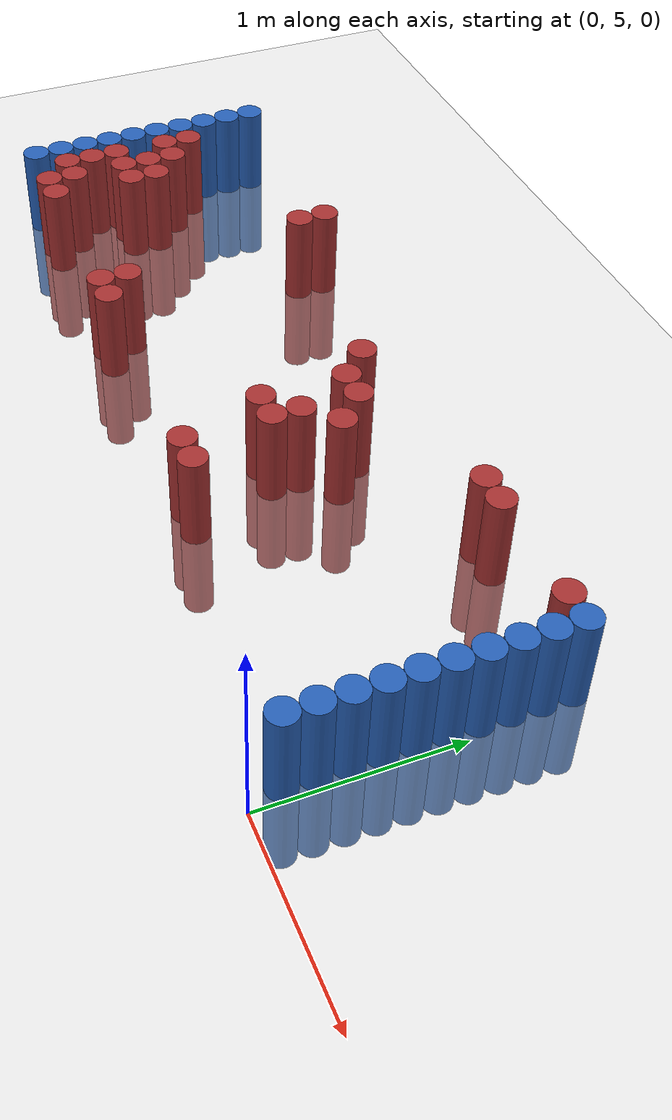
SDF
<sdf version="1.6">
 <world name="default">
  <model name="ground_plane">
   <static>1</static>
   <link name="link">
    <collision name="collision">
     <geometry><plane><normal>0 0 1</normal><size>100 100</size></plane></geometry>
     <surface><friction><ode><mu>100</mu><mu2>50</mu2></ode></friction></surface>
    </collision>
    <visual name="visual">
     <cast_shadows>0</cast_shadows>
     <geometry><plane><normal>0 0 1</normal><size>100 100</size></plane></geometry>
     <material>
      <script><uri>file://media/materials/scripts/gazebo.material</uri><name>Gazebo/Grey</name></script>
     </material>
    </visual>
   </link>
  </model>
  <model name="unit_cylinder_97">
   <static>1</static>
   <pose>-4.425000 5.325000 0.000000 0.000000 0.000000 0.000000</pose>
   <link name="link">
    <inertial>
     <mass>1</mass>
     <inertia><ixx>0.145833</ixx><ixy>0</ixy><ixz>0</ixz><iyy>0.145833</iyy><iyz>0</iyz><izz>0.125</izz></inertia>
    </inertial>
    <collision name="collision">
     <geometry><cylinder><radius>0.075000</radius><length>1</length></cylinder></geometry>
    </collision>
    <visual name="visual">
     <geometry><cylinder><radius>0.075000</radius><length>1</length></cylinder></geometry>
     <material>
      <ambient>0.152000 0.379000 0.720000 1</ambient>
      <diffuse>0.152000 0.379000 0.720000 1</diffuse>
     </material>
     <material>
      <script><name>Gazebo/Grey</name><uri>file://media/materials/scripts/gazebo.material</uri></script>
     </material>
    </visual>
   </link>
  </model>
  <model name="unit_cylinder_98">
   <static>1</static>
   <pose>-4.425000 5.475000 0.000000 0.000000 0.000000 0.000000</pose>
   <link name="link">
    <inertial>
     <mass>1</mass>
     <inertia><ixx>0.145833</ixx><ixy>0</ixy><ixz>0</ixz><iyy>0.145833</iyy><iyz>0</iyz><izz>0.125</izz></inertia>
    </inertial>
    <collision name="collision">
     <geometry><cylinder><radius>0.075000</radius><length>1</length></cylinder></geometry>
    </collision>
    <visual name="visual">
     <geometry><cylinder><radius>0.075000</radius><length>1</length></cylinder></geometry>
     <material>
      <ambient>0.152000 0.379000 0.720000 1</ambient>
      <diffuse>0.152000 0.379000 0.720000 1</diffuse>
     </material>
     <material>
      <script><name>Gazebo/Grey</name><uri>file://media/materials/scripts/gazebo.material</uri></script>
     </material>
    </visual>
   </link>
  </model>
  <model name="unit_cylinder_99">
   <static>1</static>
   <pose>-4.425000 5.625000 0.000000 0.000000 0.000000 0.000000</pose>
   <link name="link">
    <inertial>
     <mass>1</mass>
     <inertia><ixx>0.145833</ixx><ixy>0</ixy><ixz>0</ixz><iyy>0.145833</iyy><iyz>0</iyz><izz>0.125</izz></inertia>
    </inertial>
    <collision name="collision">
     <geometry><cylinder><radius>0.075000</radius><length>1</length></cylinder></geometry>
    </collision>
    <visual name="visual">
     <geometry><cylinder><radius>0.075000</radius><length>1</length></cylinder></geometry>
     <material>
      <ambient>0.152000 0.379000 0.720000 1</ambient>
      <diffuse>0.152000 0.379000 0.720000 1</diffuse>
     </material>
     <material>
      <script><name>Gazebo/Grey</name><uri>file://media/materials/scripts/gazebo.material</uri></script>
     </material>
    </visual>
   </link>
  </model>
  <model name="unit_cylinder_100">
   <static>1</static>
   <pose>-4.425000 5.775000 0.000000 0.000000 0.000000 0.000000</pose>
   <link name="link">
    <inertial>
     <mass>1</mass>
     <inertia><ixx>0.145833</ixx><ixy>0</ixy><ixz>0</ixz><iyy>0.145833</iyy><iyz>0</iyz><izz>0.125</izz></inertia>
    </inertial>
    <collision name="collision">
     <geometry><cylinder><radius>0.075000</radius><length>1</length></cylinder></geometry>
    </collision>
    <visual name="visual">
     <geometry><cylinder><radius>0.075000</radius><length>1</length></cylinder></geometry>
     <material>
      <ambient>0.152000 0.379000 0.720000 1</ambient>
      <diffuse>0.152000 0.379000 0.720000 1</diffuse>
     </material>
     <material>
      <script><name>Gazebo/Grey</name><uri>file://media/materials/scripts/gazebo.material</uri></script>
     </material>
    </visual>
   </link>
  </model>
  <model name="unit_cylinder_101">
   <static>1</static>
   <pose>-4.425000 5.925000 0.000000 0.000000 0.000000 0.000000</pose>
   <link name="link">
    <inertial>
     <mass>1</mass>
     <inertia><ixx>0.145833</ixx><ixy>0</ixy><ixz>0</ixz><iyy>0.145833</iyy><iyz>0</iyz><izz>0.125</izz></inertia>
    </inertial>
    <collision name="collision">
     <geometry><cylinder><radius>0.075000</radius><length>1</length></cylinder></geometry>
    </collision>
    <visual name="visual">
     <geometry><cylinder><radius>0.075000</radius><length>1</length></cylinder></geometry>
     <material>
      <ambient>0.152000 0.379000 0.720000 1</ambient>
      <diffuse>0.152000 0.379000 0.720000 1</diffuse>
     </material>
     <material>
      <script><name>Gazebo/Grey</name><uri>file://media/materials/scripts/gazebo.material</uri></script>
     </material>
    </visual>
   </link>
  </model>
  <model name="unit_cylinder_102">
   <static>1</static>
   <pose>-4.425000 6.075000 0.000000 0.000000 0.000000 0.000000</pose>
   <link name="link">
    <inertial>
     <mass>1</mass>
     <inertia><ixx>0.145833</ixx><ixy>0</ixy><ixz>0</ixz><iyy>0.145833</iyy><iyz>0</iyz><izz>0.125</izz></inertia>
    </inertial>
    <collision name="collision">
     <geometry><cylinder><radius>0.075000</radius><length>1</length></cylinder></geometry>
    </collision>
    <visual name="visual">
     <geometry><cylinder><radius>0.075000</radius><length>1</length></cylinder></geometry>
     <material>
      <ambient>0.152000 0.379000 0.720000 1</ambient>
      <diffuse>0.152000 0.379000 0.720000 1</diffuse>
     </material>
     <material>
      <script><name>Gazebo/Grey</name><uri>file://media/materials/scripts/gazebo.material</uri></script>
     </material>
    </visual>
   </link>
  </model>
  <model name="unit_cylinder_103">
   <static>1</static>
   <pose>-4.425000 6.225000 0.000000 0.000000 0.000000 0.000000</pose>
   <link name="link">
    <inertial>
     <mass>1</mass>
     <inertia><ixx>0.145833</ixx><ixy>0</ixy><ixz>0</ixz><iyy>0.145833</iyy><iyz>0</iyz><izz>0.125</izz></inertia>
    </inertial>
    <collision name="collision">
     <geometry><cylinder><radius>0.075000</radius><length>1</length></cylinder></geometry>
    </collision>
    <visual name="visual">
     <geometry><cylinder><radius>0.075000</radius><length>1</length></cylinder></geometry>
     <material>
      <ambient>0.152000 0.379000 0.720000 1</ambient>
      <diffuse>0.152000 0.379000 0.720000 1</diffuse>
     </material>
     <material>
      <script><name>Gazebo/Grey</name><uri>file://media/materials/scripts/gazebo.material</uri></script>
     </material>
    </visual>
   </link>
  </model>
  <model name="unit_cylinder_104">
   <static>1</static>
   <pose>-4.425000 6.375000 0.000000 0.000000 0.000000 0.000000</pose>
   <link name="link">
    <inertial>
     <mass>1</mass>
     <inertia><ixx>0.145833</ixx><ixy>0</ixy><ixz>0</ixz><iyy>0.145833</iyy><iyz>0</iyz><izz>0.125</izz></inertia>
    </inertial>
    <collision name="collision">
     <geometry><cylinder><radius>0.075000</radius><length>1</length></cylinder></geometry>
    </collision>
    <visual name="visual">
     <geometry><cylinder><radius>0.075000</radius><length>1</length></cylinder></geometry>
     <material>
      <ambient>0.152000 0.379000 0.720000 1</ambient>
      <diffuse>0.152000 0.379000 0.720000 1</diffuse>
     </material>
     <material>
      <script><name>Gazebo/Grey</name><uri>file://media/materials/scripts/gazebo.material</uri></script>
     </material>
    </visual>
   </link>
  </model>
  <model name="unit_cylinder_105">
   <static>1</static>
   <pose>-4.425000 6.525000 0.000000 0.000000 0.000000 0.000000</pose>
   <link name="link">
    <inertial>
     <mass>1</mass>
     <inertia><ixx>0.145833</ixx><ixy>0</ixy><ixz>0</ixz><iyy>0.145833</iyy><iyz>0</iyz><izz>0.125</izz></inertia>
    </inertial>
    <collision name="collision">
     <geometry><cylinder><radius>0.075000</radius><length>1</length></cylinder></geometry>
    </collision>
    <visual name="visual">
     <geometry><cylinder><radius>0.075000</radius><length>1</length></cylinder></geometry>
     <material>
      <ambient>0.152000 0.379000 0.720000 1</ambient>
      <diffuse>0.152000 0.379000 0.720000 1</diffuse>
     </material>
     <material>
      <script><name>Gazebo/Grey</name><uri>file://media/materials/scripts/gazebo.material</uri></script>
     </material>
    </visual>
   </link>
  </model>
  <model name="unit_cylinder_106">
   <static>1</static>
   <pose>-4.425000 6.675000 0.000000 0.000000 0.000000 0.000000</pose>
   <link name="link">
    <inertial>
     <mass>1</mass>
     <inertia><ixx>0.145833</ixx><ixy>0</ixy><ixz>0</ixz><iyy>0.145833</iyy><iyz>0</iyz><izz>0.125</izz></inertia>
    </inertial>
    <collision name="collision">
     <geometry><cylinder><radius>0.075000</radius><length>1</length></cylinder></geometry>
    </collision>
    <visual name="visual">
     <geometry><cylinder><radius>0.075000</radius><length>1</length></cylinder></geometry>
     <material>
      <ambient>0.152000 0.379000 0.720000 1</ambient>
      <diffuse>0.152000 0.379000 0.720000 1</diffuse>
     </material>
     <material>
      <script><name>Gazebo/Grey</name><uri>file://media/materials/scripts/gazebo.material</uri></script>
     </material>
    </visual>
   </link>
  </model>
  <model name="unit_cylinder_127">
   <static>1</static>
   <pose>-4.275000 5.475000 0.000000 0.000000 0.000000 0.000000</pose>
   <link name="link">
    <inertial>
     <mass>1</mass>
     <inertia><ixx>0.145833</ixx><ixy>0</ixy><ixz>0</ixz><iyy>0.145833</iyy><iyz>0</iyz><izz>0.125</izz></inertia>
    </inertial>
    <collision name="collision">
     <geometry><cylinder><radius>0.075000</radius><length>1</length></cylinder></geometry>
    </collision>
    <visual name="visual">
     <geometry><cylinder><radius>0.075000</radius><length>1</length></cylinder></geometry>
     <material>
      <ambient>0.648000 0.192000 0.192000 1</ambient>
      <diffuse>0.648000 0.192000 0.192000 1</diffuse>
     </material>
     <material>
      <script><name>Gazebo/Grey</name><uri>file://media/materials/scripts/gazebo.material</uri></script>
     </material>
    </visual>
   </link>
  </model>
  <model name="unit_cylinder_128">
   <static>1</static>
   <pose>-4.275000 5.625000 0.000000 0.000000 0.000000 0.000000</pose>
   <link name="link">
    <inertial>
     <mass>1</mass>
     <inertia><ixx>0.145833</ixx><ixy>0</ixy><ixz>0</ixz><iyy>0.145833</iyy><iyz>0</iyz><izz>0.125</izz></inertia>
    </inertial>
    <collision name="collision">
     <geometry><cylinder><radius>0.075000</radius><length>1</length></cylinder></geometry>
    </collision>
    <visual name="visual">
     <geometry><cylinder><radius>0.075000</radius><length>1</length></cylinder></geometry>
     <material>
      <ambient>0.648000 0.192000 0.192000 1</ambient>
      <diffuse>0.648000 0.192000 0.192000 1</diffuse>
     </material>
     <material>
      <script><name>Gazebo/Grey</name><uri>file://media/materials/scripts/gazebo.material</uri></script>
     </material>
    </visual>
   </link>
  </model>
  <model name="unit_cylinder_129">
   <static>1</static>
   <pose>-4.275000 5.775000 0.000000 0.000000 0.000000 0.000000</pose>
   <link name="link">
    <inertial>
     <mass>1</mass>
     <inertia><ixx>0.145833</ixx><ixy>0</ixy><ixz>0</ixz><iyy>0.145833</iyy><iyz>0</iyz><izz>0.125</izz></inertia>
    </inertial>
    <collision name="collision">
     <geometry><cylinder><radius>0.075000</radius><length>1</length></cylinder></geometry>
    </collision>
    <visual name="visual">
     <geometry><cylinder><radius>0.075000</radius><length>1</length></cylinder></geometry>
     <material>
      <ambient>0.648000 0.192000 0.192000 1</ambient>
      <diffuse>0.648000 0.192000 0.192000 1</diffuse>
     </material>
     <material>
      <script><name>Gazebo/Grey</name><uri>file://media/materials/scripts/gazebo.material</uri></script>
     </material>
    </visual>
   </link>
  </model>
  <model name="unit_cylinder_130">
   <static>1</static>
   <pose>-4.275000 6.075000 0.000000 0.000000 0.000000 0.000000</pose>
   <link name="link">
    <inertial>
     <mass>1</mass>
     <inertia><ixx>0.145833</ixx><ixy>0</ixy><ixz>0</ixz><iyy>0.145833</iyy><iyz>0</iyz><izz>0.125</izz></inertia>
    </inertial>
    <collision name="collision">
     <geometry><cylinder><radius>0.075000</radius><length>1</length></cylinder></geometry>
    </collision>
    <visual name="visual">
     <geometry><cylinder><radius>0.075000</radius><length>1</length></cylinder></geometry>
     <material>
      <ambient>0.648000 0.192000 0.192000 1</ambient>
      <diffuse>0.648000 0.192000 0.192000 1</diffuse>
     </material>
     <material>
      <script><name>Gazebo/Grey</name><uri>file://media/materials/scripts/gazebo.material</uri></script>
     </material>
    </visual>
   </link>
  </model>
  <model name="unit_cylinder_131">
   <static>1</static>
   <pose>-4.275000 6.225000 0.000000 0.000000 0.000000 0.000000</pose>
   <link name="link">
    <inertial>
     <mass>1</mass>
     <inertia><ixx>0.145833</ixx><ixy>0</ixy><ixz>0</ixz><iyy>0.145833</iyy><iyz>0</iyz><izz>0.125</izz></inertia>
    </inertial>
    <collision name="collision">
     <geometry><cylinder><radius>0.075000</radius><length>1</length></cylinder></geometry>
    </collision>
    <visual name="visual">
     <geometry><cylinder><radius>0.075000</radius><length>1</length></cylinder></geometry>
     <material>
      <ambient>0.648000 0.192000 0.192000 1</ambient>
      <diffuse>0.648000 0.192000 0.192000 1</diffuse>
     </material>
     <material>
      <script><name>Gazebo/Grey</name><uri>file://media/materials/scripts/gazebo.material</uri></script>
     </material>
    </visual>
   </link>
  </model>
  <model name="unit_cylinder_135">
   <static>1</static>
   <pose>-4.125000 5.325000 0.000000 0.000000 0.000000 0.000000</pose>
   <link name="link">
    <inertial>
     <mass>1</mass>
     <inertia><ixx>0.145833</ixx><ixy>0</ixy><ixz>0</ixz><iyy>0.145833</iyy><iyz>0</iyz><izz>0.125</izz></inertia>
    </inertial>
    <collision name="collision">
     <geometry><cylinder><radius>0.075000</radius><length>1</length></cylinder></geometry>
    </collision>
    <visual name="visual">
     <geometry><cylinder><radius>0.075000</radius><length>1</length></cylinder></geometry>
     <material>
      <ambient>0.648000 0.192000 0.192000 1</ambient>
      <diffuse>0.648000 0.192000 0.192000 1</diffuse>
     </material>
     <material>
      <script><name>Gazebo/Grey</name><uri>file://media/materials/scripts/gazebo.material</uri></script>
     </material>
    </visual>
   </link>
  </model>
  <model name="unit_cylinder_136">
   <static>1</static>
   <pose>-4.125000 5.475000 0.000000 0.000000 0.000000 0.000000</pose>
   <link name="link">
    <inertial>
     <mass>1</mass>
     <inertia><ixx>0.145833</ixx><ixy>0</ixy><ixz>0</ixz><iyy>0.145833</iyy><iyz>0</iyz><izz>0.125</izz></inertia>
    </inertial>
    <collision name="collision">
     <geometry><cylinder><radius>0.075000</radius><length>1</length></cylinder></geometry>
    </collision>
    <visual name="visual">
     <geometry><cylinder><radius>0.075000</radius><length>1</length></cylinder></geometry>
     <material>
      <ambient>0.648000 0.192000 0.192000 1</ambient>
      <diffuse>0.648000 0.192000 0.192000 1</diffuse>
     </material>
     <material>
      <script><name>Gazebo/Grey</name><uri>file://media/materials/scripts/gazebo.material</uri></script>
     </material>
    </visual>
   </link>
  </model>
  <model name="unit_cylinder_137">
   <static>1</static>
   <pose>-4.125000 5.775000 0.000000 0.000000 0.000000 0.000000</pose>
   <link name="link">
    <inertial>
     <mass>1</mass>
     <inertia><ixx>0.145833</ixx><ixy>0</ixy><ixz>0</ixz><iyy>0.145833</iyy><iyz>0</iyz><izz>0.125</izz></inertia>
    </inertial>
    <collision name="collision">
     <geometry><cylinder><radius>0.075000</radius><length>1</length></cylinder></geometry>
    </collision>
    <visual name="visual">
     <geometry><cylinder><radius>0.075000</radius><length>1</length></cylinder></geometry>
     <material>
      <ambient>0.648000 0.192000 0.192000 1</ambient>
      <diffuse>0.648000 0.192000 0.192000 1</diffuse>
     </material>
     <material>
      <script><name>Gazebo/Grey</name><uri>file://media/materials/scripts/gazebo.material</uri></script>
     </material>
    </visual>
   </link>
  </model>
  <model name="unit_cylinder_138">
   <static>1</static>
   <pose>-4.125000 5.925000 0.000000 0.000000 0.000000 0.000000</pose>
   <link name="link">
    <inertial>
     <mass>1</mass>
     <inertia><ixx>0.145833</ixx><ixy>0</ixy><ixz>0</ixz><iyy>0.145833</iyy><iyz>0</iyz><izz>0.125</izz></inertia>
    </inertial>
    <collision name="collision">
     <geometry><cylinder><radius>0.075000</radius><length>1</length></cylinder></geometry>
    </collision>
    <visual name="visual">
     <geometry><cylinder><radius>0.075000</radius><length>1</length></cylinder></geometry>
     <material>
      <ambient>0.648000 0.192000 0.192000 1</ambient>
      <diffuse>0.648000 0.192000 0.192000 1</diffuse>
     </material>
     <material>
      <script><name>Gazebo/Grey</name><uri>file://media/materials/scripts/gazebo.material</uri></script>
     </material>
    </visual>
   </link>
  </model>
  <model name="unit_cylinder_139">
   <static>1</static>
   <pose>-4.125000 6.075000 0.000000 0.000000 0.000000 0.000000</pose>
   <link name="link">
    <inertial>
     <mass>1</mass>
     <inertia><ixx>0.145833</ixx><ixy>0</ixy><ixz>0</ixz><iyy>0.145833</iyy><iyz>0</iyz><izz>0.125</izz></inertia>
    </inertial>
    <collision name="collision">
     <geometry><cylinder><radius>0.075000</radius><length>1</length></cylinder></geometry>
    </collision>
    <visual name="visual">
     <geometry><cylinder><radius>0.075000</radius><length>1</length></cylinder></geometry>
     <material>
      <ambient>0.648000 0.192000 0.192000 1</ambient>
      <diffuse>0.648000 0.192000 0.192000 1</diffuse>
     </material>
     <material>
      <script><name>Gazebo/Grey</name><uri>file://media/materials/scripts/gazebo.material</uri></script>
     </material>
    </visual>
   </link>
  </model>
  <model name="unit_cylinder_141">
   <static>1</static>
   <pose>-3.975000 5.325000 0.000000 0.000000 0.000000 0.000000</pose>
   <link name="link">
    <inertial>
     <mass>1</mass>
     <inertia><ixx>0.145833</ixx><ixy>0</ixy><ixz>0</ixz><iyy>0.145833</iyy><iyz>0</iyz><izz>0.125</izz></inertia>
    </inertial>
    <collision name="collision">
     <geometry><cylinder><radius>0.075000</radius><length>1</length></cylinder></geometry>
    </collision>
    <visual name="visual">
     <geometry><cylinder><radius>0.075000</radius><length>1</length></cylinder></geometry>
     <material>
      <ambient>0.648000 0.192000 0.192000 1</ambient>
      <diffuse>0.648000 0.192000 0.192000 1</diffuse>
     </material>
     <material>
      <script><name>Gazebo/Grey</name><uri>file://media/materials/scripts/gazebo.material</uri></script>
     </material>
    </visual>
   </link>
  </model>
  <model name="unit_cylinder_142">
   <static>1</static>
   <pose>-3.975000 5.775000 0.000000 0.000000 0.000000 0.000000</pose>
   <link name="link">
    <inertial>
     <mass>1</mass>
     <inertia><ixx>0.145833</ixx><ixy>0</ixy><ixz>0</ixz><iyy>0.145833</iyy><iyz>0</iyz><izz>0.125</izz></inertia>
    </inertial>
    <collision name="collision">
     <geometry><cylinder><radius>0.075000</radius><length>1</length></cylinder></geometry>
    </collision>
    <visual name="visual">
     <geometry><cylinder><radius>0.075000</radius><length>1</length></cylinder></geometry>
     <material>
      <ambient>0.648000 0.192000 0.192000 1</ambient>
      <diffuse>0.648000 0.192000 0.192000 1</diffuse>
     </material>
     <material>
      <script><name>Gazebo/Grey</name><uri>file://media/materials/scripts/gazebo.material</uri></script>
     </material>
    </visual>
   </link>
  </model>
  <model name="unit_cylinder_143">
   <static>1</static>
   <pose>-3.975000 5.925000 0.000000 0.000000 0.000000 0.000000</pose>
   <link name="link">
    <inertial>
     <mass>1</mass>
     <inertia><ixx>0.145833</ixx><ixy>0</ixy><ixz>0</ixz><iyy>0.145833</iyy><iyz>0</iyz><izz>0.125</izz></inertia>
    </inertial>
    <collision name="collision">
     <geometry><cylinder><radius>0.075000</radius><length>1</length></cylinder></geometry>
    </collision>
    <visual name="visual">
     <geometry><cylinder><radius>0.075000</radius><length>1</length></cylinder></geometry>
     <material>
      <ambient>0.648000 0.192000 0.192000 1</ambient>
      <diffuse>0.648000 0.192000 0.192000 1</diffuse>
     </material>
     <material>
      <script><name>Gazebo/Grey</name><uri>file://media/materials/scripts/gazebo.material</uri></script>
     </material>
    </visual>
   </link>
  </model>
  <model name="unit_cylinder_161">
   <static>1</static>
   <pose>-3.225000 6.525000 0.000000 0.000000 0.000000 0.000000</pose>
   <link name="link">
    <inertial>
     <mass>1</mass>
     <inertia><ixx>0.145833</ixx><ixy>0</ixy><ixz>0</ixz><iyy>0.145833</iyy><iyz>0</iyz><izz>0.125</izz></inertia>
    </inertial>
    <collision name="collision">
     <geometry><cylinder><radius>0.075000</radius><length>1</length></cylinder></geometry>
    </collision>
    <visual name="visual">
     <geometry><cylinder><radius>0.075000</radius><length>1</length></cylinder></geometry>
     <material>
      <ambient>0.648000 0.192000 0.192000 1</ambient>
      <diffuse>0.648000 0.192000 0.192000 1</diffuse>
     </material>
     <material>
      <script><name>Gazebo/Grey</name><uri>file://media/materials/scripts/gazebo.material</uri></script>
     </material>
    </visual>
   </link>
  </model>
  <model name="unit_cylinder_162">
   <static>1</static>
   <pose>-3.225000 6.675000 0.000000 0.000000 0.000000 0.000000</pose>
   <link name="link">
    <inertial>
     <mass>1</mass>
     <inertia><ixx>0.145833</ixx><ixy>0</ixy><ixz>0</ixz><iyy>0.145833</iyy><iyz>0</iyz><izz>0.125</izz></inertia>
    </inertial>
    <collision name="collision">
     <geometry><cylinder><radius>0.075000</radius><length>1</length></cylinder></geometry>
    </collision>
    <visual name="visual">
     <geometry><cylinder><radius>0.075000</radius><length>1</length></cylinder></geometry>
     <material>
      <ambient>0.648000 0.192000 0.192000 1</ambient>
      <diffuse>0.648000 0.192000 0.192000 1</diffuse>
     </material>
     <material>
      <script><name>Gazebo/Grey</name><uri>file://media/materials/scripts/gazebo.material</uri></script>
     </material>
    </visual>
   </link>
  </model>
  <model name="unit_cylinder_171">
   <static>1</static>
   <pose>-3.075000 5.325000 0.000000 0.000000 0.000000 0.000000</pose>
   <link name="link">
    <inertial>
     <mass>1</mass>
     <inertia><ixx>0.145833</ixx><ixy>0</ixy><ixz>0</ixz><iyy>0.145833</iyy><iyz>0</iyz><izz>0.125</izz></inertia>
    </inertial>
    <collision name="collision">
     <geometry><cylinder><radius>0.075000</radius><length>1</length></cylinder></geometry>
    </collision>
    <visual name="visual">
     <geometry><cylinder><radius>0.075000</radius><length>1</length></cylinder></geometry>
     <material>
      <ambient>0.648000 0.192000 0.192000 1</ambient>
      <diffuse>0.648000 0.192000 0.192000 1</diffuse>
     </material>
     <material>
      <script><name>Gazebo/Grey</name><uri>file://media/materials/scripts/gazebo.material</uri></script>
     </material>
    </visual>
   </link>
  </model>
  <model name="unit_cylinder_172">
   <static>1</static>
   <pose>-3.075000 5.475000 0.000000 0.000000 0.000000 0.000000</pose>
   <link name="link">
    <inertial>
     <mass>1</mass>
     <inertia><ixx>0.145833</ixx><ixy>0</ixy><ixz>0</ixz><iyy>0.145833</iyy><iyz>0</iyz><izz>0.125</izz></inertia>
    </inertial>
    <collision name="collision">
     <geometry><cylinder><radius>0.075000</radius><length>1</length></cylinder></geometry>
    </collision>
    <visual name="visual">
     <geometry><cylinder><radius>0.075000</radius><length>1</length></cylinder></geometry>
     <material>
      <ambient>0.648000 0.192000 0.192000 1</ambient>
      <diffuse>0.648000 0.192000 0.192000 1</diffuse>
     </material>
     <material>
      <script><name>Gazebo/Grey</name><uri>file://media/materials/scripts/gazebo.material</uri></script>
     </material>
    </visual>
   </link>
  </model>
  <model name="unit_cylinder_180">
   <static>1</static>
   <pose>-2.925000 5.325000 0.000000 0.000000 0.000000 0.000000</pose>
   <link name="link">
    <inertial>
     <mass>1</mass>
     <inertia><ixx>0.145833</ixx><ixy>0</ixy><ixz>0</ixz><iyy>0.145833</iyy><iyz>0</iyz><izz>0.125</izz></inertia>
    </inertial>
    <collision name="collision">
     <geometry><cylinder><radius>0.075000</radius><length>1</length></cylinder></geometry>
    </collision>
    <visual name="visual">
     <geometry><cylinder><radius>0.075000</radius><length>1</length></cylinder></geometry>
     <material>
      <ambient>0.648000 0.192000 0.192000 1</ambient>
      <diffuse>0.648000 0.192000 0.192000 1</diffuse>
     </material>
     <material>
      <script><name>Gazebo/Grey</name><uri>file://media/materials/scripts/gazebo.material</uri></script>
     </material>
    </visual>
   </link>
  </model>
  <model name="unit_cylinder_191">
   <static>1</static>
   <pose>-2.025000 6.375000 0.000000 0.000000 0.000000 0.000000</pose>
   <link name="link">
    <inertial>
     <mass>1</mass>
     <inertia><ixx>0.145833</ixx><ixy>0</ixy><ixz>0</ixz><iyy>0.145833</iyy><iyz>0</iyz><izz>0.125</izz></inertia>
    </inertial>
    <collision name="collision">
     <geometry><cylinder><radius>0.075000</radius><length>1</length></cylinder></geometry>
    </collision>
    <visual name="visual">
     <geometry><cylinder><radius>0.075000</radius><length>1</length></cylinder></geometry>
     <material>
      <ambient>0.648000 0.192000 0.192000 1</ambient>
      <diffuse>0.648000 0.192000 0.192000 1</diffuse>
     </material>
     <material>
      <script><name>Gazebo/Grey</name><uri>file://media/materials/scripts/gazebo.material</uri></script>
     </material>
    </visual>
   </link>
  </model>
  <model name="unit_cylinder_199">
   <static>1</static>
   <pose>-1.875000 5.775000 0.000000 0.000000 0.000000 0.000000</pose>
   <link name="link">
    <inertial>
     <mass>1</mass>
     <inertia><ixx>0.145833</ixx><ixy>0</ixy><ixz>0</ixz><iyy>0.145833</iyy><iyz>0</iyz><izz>0.125</izz></inertia>
    </inertial>
    <collision name="collision">
     <geometry><cylinder><radius>0.075000</radius><length>1</length></cylinder></geometry>
    </collision>
    <visual name="visual">
     <geometry><cylinder><radius>0.075000</radius><length>1</length></cylinder></geometry>
     <material>
      <ambient>0.648000 0.192000 0.192000 1</ambient>
      <diffuse>0.648000 0.192000 0.192000 1</diffuse>
     </material>
     <material>
      <script><name>Gazebo/Grey</name><uri>file://media/materials/scripts/gazebo.material</uri></script>
     </material>
    </visual>
   </link>
  </model>
  <model name="unit_cylinder_200">
   <static>1</static>
   <pose>-1.875000 6.225000 0.000000 0.000000 0.000000 0.000000</pose>
   <link name="link">
    <inertial>
     <mass>1</mass>
     <inertia><ixx>0.145833</ixx><ixy>0</ixy><ixz>0</ixz><iyy>0.145833</iyy><iyz>0</iyz><izz>0.125</izz></inertia>
    </inertial>
    <collision name="collision">
     <geometry><cylinder><radius>0.075000</radius><length>1</length></cylinder></geometry>
    </collision>
    <visual name="visual">
     <geometry><cylinder><radius>0.075000</radius><length>1</length></cylinder></geometry>
     <material>
      <ambient>0.648000 0.192000 0.192000 1</ambient>
      <diffuse>0.648000 0.192000 0.192000 1</diffuse>
     </material>
     <material>
      <script><name>Gazebo/Grey</name><uri>file://media/materials/scripts/gazebo.material</uri></script>
     </material>
    </visual>
   </link>
  </model>
  <model name="unit_cylinder_209">
   <static>1</static>
   <pose>-1.725000 5.325000 0.000000 0.000000 0.000000 0.000000</pose>
   <link name="link">
    <inertial>
     <mass>1</mass>
     <inertia><ixx>0.145833</ixx><ixy>0</ixy><ixz>0</ixz><iyy>0.145833</iyy><iyz>0</iyz><izz>0.125</izz></inertia>
    </inertial>
    <collision name="collision">
     <geometry><cylinder><radius>0.075000</radius><length>1</length></cylinder></geometry>
    </collision>
    <visual name="visual">
     <geometry><cylinder><radius>0.075000</radius><length>1</length></cylinder></geometry>
     <material>
      <ambient>0.648000 0.192000 0.192000 1</ambient>
      <diffuse>0.648000 0.192000 0.192000 1</diffuse>
     </material>
     <material>
      <script><name>Gazebo/Grey</name><uri>file://media/materials/scripts/gazebo.material</uri></script>
     </material>
    </visual>
   </link>
  </model>
  <model name="unit_cylinder_210">
   <static>1</static>
   <pose>-1.725000 5.775000 0.000000 0.000000 0.000000 0.000000</pose>
   <link name="link">
    <inertial>
     <mass>1</mass>
     <inertia><ixx>0.145833</ixx><ixy>0</ixy><ixz>0</ixz><iyy>0.145833</iyy><iyz>0</iyz><izz>0.125</izz></inertia>
    </inertial>
    <collision name="collision">
     <geometry><cylinder><radius>0.075000</radius><length>1</length></cylinder></geometry>
    </collision>
    <visual name="visual">
     <geometry><cylinder><radius>0.075000</radius><length>1</length></cylinder></geometry>
     <material>
      <ambient>0.648000 0.192000 0.192000 1</ambient>
      <diffuse>0.648000 0.192000 0.192000 1</diffuse>
     </material>
     <material>
      <script><name>Gazebo/Grey</name><uri>file://media/materials/scripts/gazebo.material</uri></script>
     </material>
    </visual>
   </link>
  </model>
  <model name="unit_cylinder_211">
   <static>1</static>
   <pose>-1.725000 5.925000 0.000000 0.000000 0.000000 0.000000</pose>
   <link name="link">
    <inertial>
     <mass>1</mass>
     <inertia><ixx>0.145833</ixx><ixy>0</ixy><ixz>0</ixz><iyy>0.145833</iyy><iyz>0</iyz><izz>0.125</izz></inertia>
    </inertial>
    <collision name="collision">
     <geometry><cylinder><radius>0.075000</radius><length>1</length></cylinder></geometry>
    </collision>
    <visual name="visual">
     <geometry><cylinder><radius>0.075000</radius><length>1</length></cylinder></geometry>
     <material>
      <ambient>0.648000 0.192000 0.192000 1</ambient>
      <diffuse>0.648000 0.192000 0.192000 1</diffuse>
     </material>
     <material>
      <script><name>Gazebo/Grey</name><uri>file://media/materials/scripts/gazebo.material</uri></script>
     </material>
    </visual>
   </link>
  </model>
  <model name="unit_cylinder_212">
   <static>1</static>
   <pose>-1.725000 6.225000 0.000000 0.000000 0.000000 0.000000</pose>
   <link name="link">
    <inertial>
     <mass>1</mass>
     <inertia><ixx>0.145833</ixx><ixy>0</ixy><ixz>0</ixz><iyy>0.145833</iyy><iyz>0</iyz><izz>0.125</izz></inertia>
    </inertial>
    <collision name="collision">
     <geometry><cylinder><radius>0.075000</radius><length>1</length></cylinder></geometry>
    </collision>
    <visual name="visual">
     <geometry><cylinder><radius>0.075000</radius><length>1</length></cylinder></geometry>
     <material>
      <ambient>0.648000 0.192000 0.192000 1</ambient>
      <diffuse>0.648000 0.192000 0.192000 1</diffuse>
     </material>
     <material>
      <script><name>Gazebo/Grey</name><uri>file://media/materials/scripts/gazebo.material</uri></script>
     </material>
    </visual>
   </link>
  </model>
  <model name="unit_cylinder_217">
   <static>1</static>
   <pose>-1.575000 5.325000 0.000000 0.000000 0.000000 0.000000</pose>
   <link name="link">
    <inertial>
     <mass>1</mass>
     <inertia><ixx>0.145833</ixx><ixy>0</ixy><ixz>0</ixz><iyy>0.145833</iyy><iyz>0</iyz><izz>0.125</izz></inertia>
    </inertial>
    <collision name="collision">
     <geometry><cylinder><radius>0.075000</radius><length>1</length></cylinder></geometry>
    </collision>
    <visual name="visual">
     <geometry><cylinder><radius>0.075000</radius><length>1</length></cylinder></geometry>
     <material>
      <ambient>0.648000 0.192000 0.192000 1</ambient>
      <diffuse>0.648000 0.192000 0.192000 1</diffuse>
     </material>
     <material>
      <script><name>Gazebo/Grey</name><uri>file://media/materials/scripts/gazebo.material</uri></script>
     </material>
    </visual>
   </link>
  </model>
  <model name="unit_cylinder_218">
   <static>1</static>
   <pose>-1.575000 6.075000 0.000000 0.000000 0.000000 0.000000</pose>
   <link name="link">
    <inertial>
     <mass>1</mass>
     <inertia><ixx>0.145833</ixx><ixy>0</ixy><ixz>0</ixz><iyy>0.145833</iyy><iyz>0</iyz><izz>0.125</izz></inertia>
    </inertial>
    <collision name="collision">
     <geometry><cylinder><radius>0.075000</radius><length>1</length></cylinder></geometry>
    </collision>
    <visual name="visual">
     <geometry><cylinder><radius>0.075000</radius><length>1</length></cylinder></geometry>
     <material>
      <ambient>0.648000 0.192000 0.192000 1</ambient>
      <diffuse>0.648000 0.192000 0.192000 1</diffuse>
     </material>
     <material>
      <script><name>Gazebo/Grey</name><uri>file://media/materials/scripts/gazebo.material</uri></script>
     </material>
    </visual>
   </link>
  </model>
  <model name="unit_cylinder_240">
   <static>1</static>
   <pose>-0.975000 6.525000 0.000000 0.000000 0.000000 0.000000</pose>
   <link name="link">
    <inertial>
     <mass>1</mass>
     <inertia><ixx>0.145833</ixx><ixy>0</ixy><ixz>0</ixz><iyy>0.145833</iyy><iyz>0</iyz><izz>0.125</izz></inertia>
    </inertial>
    <collision name="collision">
     <geometry><cylinder><radius>0.075000</radius><length>1</length></cylinder></geometry>
    </collision>
    <visual name="visual">
     <geometry><cylinder><radius>0.075000</radius><length>1</length></cylinder></geometry>
     <material>
      <ambient>0.648000 0.192000 0.192000 1</ambient>
      <diffuse>0.648000 0.192000 0.192000 1</diffuse>
     </material>
     <material>
      <script><name>Gazebo/Grey</name><uri>file://media/materials/scripts/gazebo.material</uri></script>
     </material>
    </visual>
   </link>
  </model>
  <model name="unit_cylinder_245">
   <static>1</static>
   <pose>-0.825000 6.525000 0.000000 0.000000 0.000000 0.000000</pose>
   <link name="link">
    <inertial>
     <mass>1</mass>
     <inertia><ixx>0.145833</ixx><ixy>0</ixy><ixz>0</ixz><iyy>0.145833</iyy><iyz>0</iyz><izz>0.125</izz></inertia>
    </inertial>
    <collision name="collision">
     <geometry><cylinder><radius>0.075000</radius><length>1</length></cylinder></geometry>
    </collision>
    <visual name="visual">
     <geometry><cylinder><radius>0.075000</radius><length>1</length></cylinder></geometry>
     <material>
      <ambient>0.648000 0.192000 0.192000 1</ambient>
      <diffuse>0.648000 0.192000 0.192000 1</diffuse>
     </material>
     <material>
      <script><name>Gazebo/Grey</name><uri>file://media/materials/scripts/gazebo.material</uri></script>
     </material>
    </visual>
   </link>
  </model>
  <model name="unit_cylinder_265">
   <static>1</static>
   <pose>-0.225000 6.525000 0.000000 0.000000 0.000000 0.000000</pose>
   <link name="link">
    <inertial>
     <mass>1</mass>
     <inertia><ixx>0.145833</ixx><ixy>0</ixy><ixz>0</ixz><iyy>0.145833</iyy><iyz>0</iyz><izz>0.125</izz></inertia>
    </inertial>
    <collision name="collision">
     <geometry><cylinder><radius>0.075000</radius><length>1</length></cylinder></geometry>
    </collision>
    <visual name="visual">
     <geometry><cylinder><radius>0.075000</radius><length>1</length></cylinder></geometry>
     <material>
      <ambient>0.648000 0.192000 0.192000 1</ambient>
      <diffuse>0.648000 0.192000 0.192000 1</diffuse>
     </material>
     <material>
      <script><name>Gazebo/Grey</name><uri>file://media/materials/scripts/gazebo.material</uri></script>
     </material>
    </visual>
   </link>
  </model>
  <model name="unit_cylinder_273">
   <static>1</static>
   <pose>-0.075000 5.175000 0.000000 0.000000 0.000000 0.000000</pose>
   <link name="link">
    <inertial>
     <mass>1</mass>
     <inertia><ixx>0.145833</ixx><ixy>0</ixy><ixz>0</ixz><iyy>0.145833</iyy><iyz>0</iyz><izz>0.125</izz></inertia>
    </inertial>
    <collision name="collision">
     <geometry><cylinder><radius>0.075000</radius><length>1</length></cylinder></geometry>
    </collision>
    <visual name="visual">
     <geometry><cylinder><radius>0.075000</radius><length>1</length></cylinder></geometry>
     <material>
      <ambient>0.152000 0.379000 0.720000 1</ambient>
      <diffuse>0.152000 0.379000 0.720000 1</diffuse>
     </material>
     <material>
      <script><name>Gazebo/Grey</name><uri>file://media/materials/scripts/gazebo.material</uri></script>
     </material>
    </visual>
   </link>
  </model>
  <model name="unit_cylinder_274">
   <static>1</static>
   <pose>-0.075000 5.325000 0.000000 0.000000 0.000000 0.000000</pose>
   <link name="link">
    <inertial>
     <mass>1</mass>
     <inertia><ixx>0.145833</ixx><ixy>0</ixy><ixz>0</ixz><iyy>0.145833</iyy><iyz>0</iyz><izz>0.125</izz></inertia>
    </inertial>
    <collision name="collision">
     <geometry><cylinder><radius>0.075000</radius><length>1</length></cylinder></geometry>
    </collision>
    <visual name="visual">
     <geometry><cylinder><radius>0.075000</radius><length>1</length></cylinder></geometry>
     <material>
      <ambient>0.152000 0.379000 0.720000 1</ambient>
      <diffuse>0.152000 0.379000 0.720000 1</diffuse>
     </material>
     <material>
      <script><name>Gazebo/Grey</name><uri>file://media/materials/scripts/gazebo.material</uri></script>
     </material>
    </visual>
   </link>
  </model>
  <model name="unit_cylinder_275">
   <static>1</static>
   <pose>-0.075000 5.475000 0.000000 0.000000 0.000000 0.000000</pose>
   <link name="link">
    <inertial>
     <mass>1</mass>
     <inertia><ixx>0.145833</ixx><ixy>0</ixy><ixz>0</ixz><iyy>0.145833</iyy><iyz>0</iyz><izz>0.125</izz></inertia>
    </inertial>
    <collision name="collision">
     <geometry><cylinder><radius>0.075000</radius><length>1</length></cylinder></geometry>
    </collision>
    <visual name="visual">
     <geometry><cylinder><radius>0.075000</radius><length>1</length></cylinder></geometry>
     <material>
      <ambient>0.152000 0.379000 0.720000 1</ambient>
      <diffuse>0.152000 0.379000 0.720000 1</diffuse>
     </material>
     <material>
      <script><name>Gazebo/Grey</name><uri>file://media/materials/scripts/gazebo.material</uri></script>
     </material>
    </visual>
   </link>
  </model>
  <model name="unit_cylinder_276">
   <static>1</static>
   <pose>-0.075000 5.625000 0.000000 0.000000 0.000000 0.000000</pose>
   <link name="link">
    <inertial>
     <mass>1</mass>
     <inertia><ixx>0.145833</ixx><ixy>0</ixy><ixz>0</ixz><iyy>0.145833</iyy><iyz>0</iyz><izz>0.125</izz></inertia>
    </inertial>
    <collision name="collision">
     <geometry><cylinder><radius>0.075000</radius><length>1</length></cylinder></geometry>
    </collision>
    <visual name="visual">
     <geometry><cylinder><radius>0.075000</radius><length>1</length></cylinder></geometry>
     <material>
      <ambient>0.152000 0.379000 0.720000 1</ambient>
      <diffuse>0.152000 0.379000 0.720000 1</diffuse>
     </material>
     <material>
      <script><name>Gazebo/Grey</name><uri>file://media/materials/scripts/gazebo.material</uri></script>
     </material>
    </visual>
   </link>
  </model>
  <model name="unit_cylinder_277">
   <static>1</static>
   <pose>-0.075000 5.775000 0.000000 0.000000 0.000000 0.000000</pose>
   <link name="link">
    <inertial>
     <mass>1</mass>
     <inertia><ixx>0.145833</ixx><ixy>0</ixy><ixz>0</ixz><iyy>0.145833</iyy><iyz>0</iyz><izz>0.125</izz></inertia>
    </inertial>
    <collision name="collision">
     <geometry><cylinder><radius>0.075000</radius><length>1</length></cylinder></geometry>
    </collision>
    <visual name="visual">
     <geometry><cylinder><radius>0.075000</radius><length>1</length></cylinder></geometry>
     <material>
      <ambient>0.152000 0.379000 0.720000 1</ambient>
      <diffuse>0.152000 0.379000 0.720000 1</diffuse>
     </material>
     <material>
      <script><name>Gazebo/Grey</name><uri>file://media/materials/scripts/gazebo.material</uri></script>
     </material>
    </visual>
   </link>
  </model>
  <model name="unit_cylinder_278">
   <static>1</static>
   <pose>-0.075000 5.925000 0.000000 0.000000 0.000000 0.000000</pose>
   <link name="link">
    <inertial>
     <mass>1</mass>
     <inertia><ixx>0.145833</ixx><ixy>0</ixy><ixz>0</ixz><iyy>0.145833</iyy><iyz>0</iyz><izz>0.125</izz></inertia>
    </inertial>
    <collision name="collision">
     <geometry><cylinder><radius>0.075000</radius><length>1</length></cylinder></geometry>
    </collision>
    <visual name="visual">
     <geometry><cylinder><radius>0.075000</radius><length>1</length></cylinder></geometry>
     <material>
      <ambient>0.152000 0.379000 0.720000 1</ambient>
      <diffuse>0.152000 0.379000 0.720000 1</diffuse>
     </material>
     <material>
      <script><name>Gazebo/Grey</name><uri>file://media/materials/scripts/gazebo.material</uri></script>
     </material>
    </visual>
   </link>
  </model>
  <model name="unit_cylinder_279">
   <static>1</static>
   <pose>-0.075000 6.075000 0.000000 0.000000 0.000000 0.000000</pose>
   <link name="link">
    <inertial>
     <mass>1</mass>
     <inertia><ixx>0.145833</ixx><ixy>0</ixy><ixz>0</ixz><iyy>0.145833</iyy><iyz>0</iyz><izz>0.125</izz></inertia>
    </inertial>
    <collision name="collision">
     <geometry><cylinder><radius>0.075000</radius><length>1</length></cylinder></geometry>
    </collision>
    <visual name="visual">
     <geometry><cylinder><radius>0.075000</radius><length>1</length></cylinder></geometry>
     <material>
      <ambient>0.152000 0.379000 0.720000 1</ambient>
      <diffuse>0.152000 0.379000 0.720000 1</diffuse>
     </material>
     <material>
      <script><name>Gazebo/Grey</name><uri>file://media/materials/scripts/gazebo.material</uri></script>
     </material>
    </visual>
   </link>
  </model>
  <model name="unit_cylinder_280">
   <static>1</static>
   <pose>-0.075000 6.225000 0.000000 0.000000 0.000000 0.000000</pose>
   <link name="link">
    <inertial>
     <mass>1</mass>
     <inertia><ixx>0.145833</ixx><ixy>0</ixy><ixz>0</ixz><iyy>0.145833</iyy><iyz>0</iyz><izz>0.125</izz></inertia>
    </inertial>
    <collision name="collision">
     <geometry><cylinder><radius>0.075000</radius><length>1</length></cylinder></geometry>
    </collision>
    <visual name="visual">
     <geometry><cylinder><radius>0.075000</radius><length>1</length></cylinder></geometry>
     <material>
      <ambient>0.152000 0.379000 0.720000 1</ambient>
      <diffuse>0.152000 0.379000 0.720000 1</diffuse>
     </material>
     <material>
      <script><name>Gazebo/Grey</name><uri>file://media/materials/scripts/gazebo.material</uri></script>
     </material>
    </visual>
   </link>
  </model>
  <model name="unit_cylinder_281">
   <static>1</static>
   <pose>-0.075000 6.375000 0.000000 0.000000 0.000000 0.000000</pose>
   <link name="link">
    <inertial>
     <mass>1</mass>
     <inertia><ixx>0.145833</ixx><ixy>0</ixy><ixz>0</ixz><iyy>0.145833</iyy><iyz>0</iyz><izz>0.125</izz></inertia>
    </inertial>
    <collision name="collision">
     <geometry><cylinder><radius>0.075000</radius><length>1</length></cylinder></geometry>
    </collision>
    <visual name="visual">
     <geometry><cylinder><radius>0.075000</radius><length>1</length></cylinder></geometry>
     <material>
      <ambient>0.152000 0.379000 0.720000 1</ambient>
      <diffuse>0.152000 0.379000 0.720000 1</diffuse>
     </material>
     <material>
      <script><name>Gazebo/Grey</name><uri>file://media/materials/scripts/gazebo.material</uri></script>
     </material>
    </visual>
   </link>
  </model>
  <model name="unit_cylinder_282">
   <static>1</static>
   <pose>-0.075000 6.525000 0.000000 0.000000 0.000000 0.000000</pose>
   <link name="link">
    <inertial>
     <mass>1</mass>
     <inertia><ixx>0.145833</ixx><ixy>0</ixy><ixz>0</ixz><iyy>0.145833</iyy><iyz>0</iyz><izz>0.125</izz></inertia>
    </inertial>
    <collision name="collision">
     <geometry><cylinder><radius>0.075000</radius><length>1</length></cylinder></geometry>
    </collision>
    <visual name="visual">
     <geometry><cylinder><radius>0.075000</radius><length>1</length></cylinder></geometry>
     <material>
      <ambient>0.152000 0.379000 0.720000 1</ambient>
      <diffuse>0.152000 0.379000 0.720000 1</diffuse>
     </material>
     <material>
      <script><name>Gazebo/Grey</name><uri>file://media/materials/scripts/gazebo.material</uri></script>
     </material>
    </visual>
   </link>
  </model>
 </world>
</sdf>
